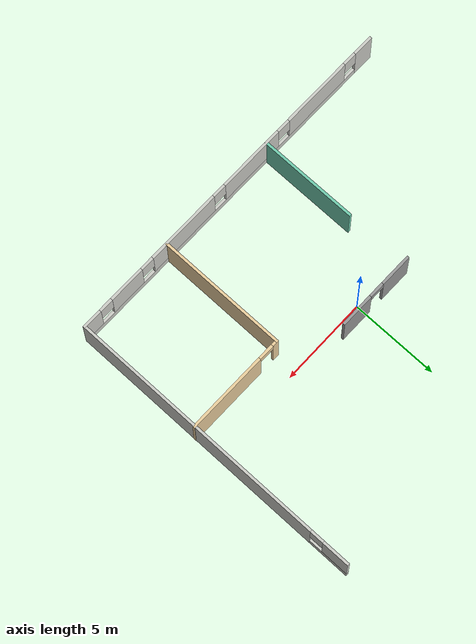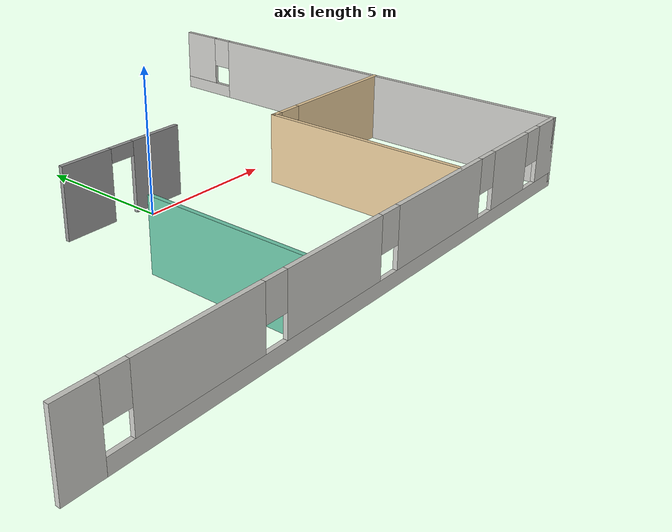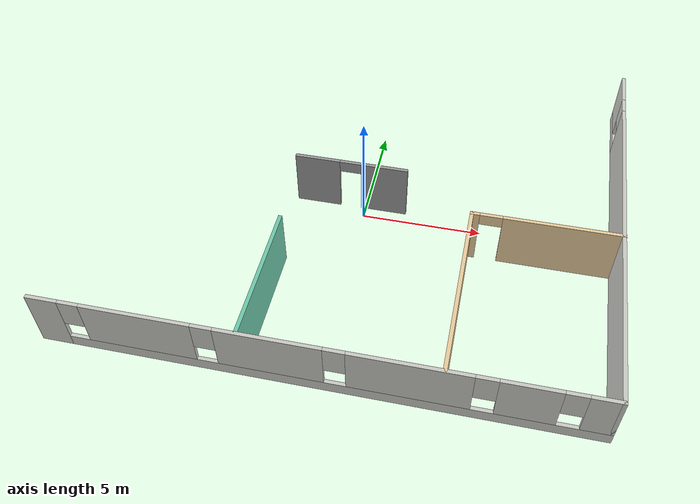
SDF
<sdf version="1.6">
 <model name="Building">
  <link name="Wall_18">
   <pose>4.58481 -4.95144 0 0 -0 1.5708</pose>
   <visual name="Wall_18_Visual">
    <pose>0 0 1.25 0 -0 0</pose>
    <geometry><box><size>7.5 0.15 2.5</size></box></geometry>
    <material>
     <script><uri>file://media/materials/scripts/gazebo.material</uri><name>Gazebo/Grey</name></script>
     <ambient>0.921569 0.807843 0.615686 1</ambient>
     <shader type="pixel"/>
     <diffuse>0.7 0.7 0.7 1</diffuse>
     <specular>0.01 0.01 0.01 1</specular>
     <emissive>0 0 0 1</emissive>
    </material>
    <meta><layer>0</layer></meta>
   </visual>
   <collision name="Wall_18_Collision">
    <pose>0 0 1.25 0 -0 0</pose>
    <geometry><box><size>7.5 0.15 2.5</size></box></geometry>
    <surface>
     <friction>
      <ode><mu>1</mu><mu2>1</mu2><fdir1>0 0 0</fdir1><slip1>0</slip1><slip2>0</slip2></ode>
      <torsional>
       <coefficient>1</coefficient>
       <patch_radius>0</patch_radius>
       <surface_radius>0</surface_radius>
       <use_patch_radius>1</use_patch_radius>
       <ode><slip>0</slip></ode>
      </torsional>
     </friction>
     <bounce><restitution_coefficient>0</restitution_coefficient><threshold>1e+06</threshold></bounce>
     <contact>
      <collide_without_contact>0</collide_without_contact>
      <collide_without_contact_bitmask>1</collide_without_contact_bitmask>
      <collide_bitmask>1</collide_bitmask>
      <ode>
       <soft_cfm>0</soft_cfm>
       <soft_erp>0.2</soft_erp>
       <kp>1e+13</kp>
       <kd>1</kd>
       <max_vel>0.01</max_vel>
       <min_depth>0</min_depth>
      </ode>
      <bullet>
       <split_impulse>1</split_impulse>
       <split_impulse_penetration_threshold>-0.01</split_impulse_penetration_threshold>
       <soft_cfm>0</soft_cfm>
       <soft_erp>0.2</soft_erp>
       <kp>1e+13</kp>
       <kd>1</kd>
      </bullet>
     </contact>
    </surface>
   </collision>
  </link>
  <link name="Wall_19">
   <pose>7.50981 -1.27643 0 0 -0 0</pose>
   <visual name="Wall_19_Visual_1">
    <pose>0.646095 0 1.25 0 -0 0</pose>
    <geometry><box><size>4.70781 0.15 2.5</size></box></geometry>
    <material>
     <script><uri>file://media/materials/scripts/gazebo.material</uri><name>Gazebo/Grey</name></script>
     <ambient>0.921569 0.807843 0.615686 1</ambient>
     <shader type="pixel"/>
     <diffuse>0.7 0.7 0.7 1</diffuse>
     <specular>0.01 0.01 0.01 1</specular>
     <emissive>0 0 0 1</emissive>
    </material>
    <meta><layer>0</layer></meta>
   </visual>
   <visual name="Wall_19_Visual_2">
    <pose>-2.15781 0 2.25 0 -0 0</pose>
    <geometry><box><size>0.9 0.15 0.5</size></box></geometry>
    <material>
     <script><uri>file://media/materials/scripts/gazebo.material</uri><name>Gazebo/Grey</name></script>
     <ambient>0.921569 0.807843 0.615686 1</ambient>
     <shader type="pixel"/>
     <diffuse>0.7 0.7 0.7 1</diffuse>
     <specular>0.01 0.01 0.01 1</specular>
     <emissive>0 0 0 1</emissive>
    </material>
    <meta><layer>0</layer></meta>
   </visual>
   <visual name="Wall_19_Visual_0">
    <pose>-2.8039 0 1.25 0 -0 0</pose>
    <geometry><box><size>0.39219 0.15 2.5</size></box></geometry>
    <material>
     <script><uri>file://media/materials/scripts/gazebo.material</uri><name>Gazebo/Grey</name></script>
     <ambient>0.921569 0.807843 0.615686 1</ambient>
     <shader type="pixel"/>
     <diffuse>0.7 0.7 0.7 1</diffuse>
     <specular>0.01 0.01 0.01 1</specular>
     <emissive>0 0 0 1</emissive>
    </material>
    <meta><layer>0</layer></meta>
   </visual>
   <collision name="Wall_19_Collision_1">
    <pose>0.646095 0 1.25 0 -0 0</pose>
    <geometry><box><size>4.70781 0.15 2.5</size></box></geometry>
    <surface>
     <friction>
      <ode><mu>1</mu><mu2>1</mu2><fdir1>0 0 0</fdir1><slip1>0</slip1><slip2>0</slip2></ode>
      <torsional>
       <coefficient>1</coefficient>
       <patch_radius>0</patch_radius>
       <surface_radius>0</surface_radius>
       <use_patch_radius>1</use_patch_radius>
       <ode><slip>0</slip></ode>
      </torsional>
     </friction>
     <bounce><restitution_coefficient>0</restitution_coefficient><threshold>1e+06</threshold></bounce>
     <contact>
      <collide_without_contact>0</collide_without_contact>
      <collide_without_contact_bitmask>1</collide_without_contact_bitmask>
      <collide_bitmask>1</collide_bitmask>
      <ode>
       <soft_cfm>0</soft_cfm>
       <soft_erp>0.2</soft_erp>
       <kp>1e+13</kp>
       <kd>1</kd>
       <max_vel>0.01</max_vel>
       <min_depth>0</min_depth>
      </ode>
      <bullet>
       <split_impulse>1</split_impulse>
       <split_impulse_penetration_threshold>-0.01</split_impulse_penetration_threshold>
       <soft_cfm>0</soft_cfm>
       <soft_erp>0.2</soft_erp>
       <kp>1e+13</kp>
       <kd>1</kd>
      </bullet>
     </contact>
    </surface>
   </collision>
   <collision name="Wall_19_Collision_0">
    <pose>-2.8039 0 1.25 0 -0 0</pose>
    <geometry><box><size>0.39219 0.15 2.5</size></box></geometry>
    <surface>
     <friction>
      <ode><mu>1</mu><mu2>1</mu2><fdir1>0 0 0</fdir1><slip1>0</slip1><slip2>0</slip2></ode>
      <torsional>
       <coefficient>1</coefficient>
       <patch_radius>0</patch_radius>
       <surface_radius>0</surface_radius>
       <use_patch_radius>1</use_patch_radius>
       <ode><slip>0</slip></ode>
      </torsional>
     </friction>
     <bounce><restitution_coefficient>0</restitution_coefficient><threshold>1e+06</threshold></bounce>
     <contact>
      <collide_without_contact>0</collide_without_contact>
      <collide_without_contact_bitmask>1</collide_without_contact_bitmask>
      <collide_bitmask>1</collide_bitmask>
      <ode>
       <soft_cfm>0</soft_cfm>
       <soft_erp>0.2</soft_erp>
       <kp>1e+13</kp>
       <kd>1</kd>
       <max_vel>0.01</max_vel>
       <min_depth>0</min_depth>
      </ode>
      <bullet>
       <split_impulse>1</split_impulse>
       <split_impulse_penetration_threshold>-0.01</split_impulse_penetration_threshold>
       <soft_cfm>0</soft_cfm>
       <soft_erp>0.2</soft_erp>
       <kp>1e+13</kp>
       <kd>1</kd>
      </bullet>
     </contact>
    </surface>
   </collision>
   <collision name="Wall_19_Collision_2">
    <pose>-2.15781 0 2.25 0 -0 0</pose>
    <geometry><box><size>0.9 0.15 0.5</size></box></geometry>
    <surface>
     <friction>
      <ode><mu>1</mu><mu2>1</mu2><fdir1>0 0 0</fdir1><slip1>0</slip1><slip2>0</slip2></ode>
      <torsional>
       <coefficient>1</coefficient>
       <patch_radius>0</patch_radius>
       <surface_radius>0</surface_radius>
       <use_patch_radius>1</use_patch_radius>
       <ode><slip>0</slip></ode>
      </torsional>
     </friction>
     <bounce><restitution_coefficient>0</restitution_coefficient><threshold>1e+06</threshold></bounce>
     <contact>
      <collide_without_contact>0</collide_without_contact>
      <collide_without_contact_bitmask>1</collide_without_contact_bitmask>
      <collide_bitmask>1</collide_bitmask>
      <ode>
       <soft_cfm>0</soft_cfm>
       <soft_erp>0.2</soft_erp>
       <kp>1e+13</kp>
       <kd>1</kd>
       <max_vel>0.01</max_vel>
       <min_depth>0</min_depth>
      </ode>
      <bullet>
       <split_impulse>1</split_impulse>
       <split_impulse_penetration_threshold>-0.01</split_impulse_penetration_threshold>
       <soft_cfm>0</soft_cfm>
       <soft_erp>0.2</soft_erp>
       <kp>1e+13</kp>
       <kd>1</kd>
      </bullet>
     </contact>
    </surface>
   </collision>
  </link>
  <link name="Wall_2">
   <pose>-0.009806 -8.675 0 0 -0 0</pose>
   <inertial>
    <mass>1</mass>
    <inertia><ixx>1</ixx><ixy>0</ixy><ixz>0</ixz><iyy>1</iyy><iyz>0</iyz><izz>1</izz></inertia>
   </inertial>
   <visual name="Wall_2_Visual_7">
    <pose>-8.87805 0 1.9 0 -0 0</pose>
    <geometry><box><size>0.8 0.15 1.2</size></box></geometry>
    <material>
     <script><uri>file://media/materials/scripts/gazebo.material</uri><name>Gazebo/CeilingTiled</name></script>
     <ambient>0.5 0.5 0.5 1</ambient>
     <shader type="pixel"><normal_map>__default__</normal_map></shader>
     <diffuse>1 1 1 1</diffuse>
     <specular>0 0 0 1</specular>
     <emissive>0 0 0 1</emissive>
    </material>
    <meta><layer>0</layer></meta>
   </visual>
   <visual name="Wall_2_Visual_5">
    <pose>7.47744 0 1.5 0 -0 0</pose>
    <geometry><box><size>2.12934 0.15 2</size></box></geometry>
    <material>
     <script><uri>file://media/materials/scripts/gazebo.material</uri><name>Gazebo/CeilingTiled</name></script>
     <ambient>0.5 0.5 0.5 1</ambient>
     <shader type="pixel"><normal_map>__default__</normal_map></shader>
     <diffuse>1 1 1 1</diffuse>
     <specular>0 0 0 1</specular>
     <emissive>0 0 0 1</emissive>
    </material>
    <meta><layer>0</layer></meta>
   </visual>
   <visual name="Wall_2_Visual_9">
    <pose>0.805049 0 1.9 0 -0 0</pose>
    <geometry><box><size>0.8 0.15 1.2</size></box></geometry>
    <material>
     <script><uri>file://media/materials/scripts/gazebo.material</uri><name>Gazebo/CeilingTiled</name></script>
     <ambient>0.5 0.5 0.5 1</ambient>
     <shader type="pixel"><normal_map>__default__</normal_map></shader>
     <diffuse>1 1 1 1</diffuse>
     <specular>0 0 0 1</specular>
     <emissive>0 0 0 1</emissive>
    </material>
    <meta><layer>0</layer></meta>
   </visual>
   <visual name="Wall_2_Visual_8">
    <pose>-3.91445 0 1.9 0 -0 0</pose>
    <geometry><box><size>0.8 0.15 1.2</size></box></geometry>
    <material>
     <script><uri>file://media/materials/scripts/gazebo.material</uri><name>Gazebo/CeilingTiled</name></script>
     <ambient>0.5 0.5 0.5 1</ambient>
     <shader type="pixel"><normal_map>__default__</normal_map></shader>
     <diffuse>1 1 1 1</diffuse>
     <specular>0 0 0 1</specular>
     <emissive>0 0 0 1</emissive>
    </material>
    <meta><layer>0</layer></meta>
   </visual>
   <visual name="Wall_2_Visual_4">
    <pose>3.40891 0 1.5 0 -0 0</pose>
    <geometry><box><size>4.40772 0.15 2</size></box></geometry>
    <material>
     <script><uri>file://media/materials/scripts/gazebo.material</uri><name>Gazebo/CeilingTiled</name></script>
     <ambient>0.5 0.5 0.5 1</ambient>
     <shader type="pixel"><normal_map>__default__</normal_map></shader>
     <diffuse>1 1 1 1</diffuse>
     <specular>0 0 0 1</specular>
     <emissive>0 0 0 1</emissive>
    </material>
    <meta><layer>0</layer></meta>
   </visual>
   <visual name="Wall_2_Visual_10">
    <pose>6.01277 0 1.9 0 -0 0</pose>
    <geometry><box><size>0.8 0.15 1.2</size></box></geometry>
    <material>
     <script><uri>file://media/materials/scripts/gazebo.material</uri><name>Gazebo/CeilingTiled</name></script>
     <ambient>0.5 0.5 0.5 1</ambient>
     <shader type="pixel"><normal_map>__default__</normal_map></shader>
     <diffuse>1 1 1 1</diffuse>
     <specular>0 0 0 1</specular>
     <emissive>0 0 0 1</emissive>
    </material>
    <meta><layer>0</layer></meta>
   </visual>
   <visual name="Wall_2_Visual_11">
    <pose>8.94211 0 1.9 0 -0 0</pose>
    <geometry><box><size>0.8 0.15 1.2</size></box></geometry>
    <material>
     <script><uri>file://media/materials/scripts/gazebo.material</uri><name>Gazebo/CeilingTiled</name></script>
     <ambient>0.5 0.5 0.5 1</ambient>
     <shader type="pixel"><normal_map>__default__</normal_map></shader>
     <diffuse>1 1 1 1</diffuse>
     <specular>0 0 0 1</specular>
     <emissive>0 0 0 1</emissive>
    </material>
    <meta><layer>0</layer></meta>
   </visual>
   <visual name="Wall_2_Visual_6">
    <pose>9.92106 0 1.5 0 -0 0</pose>
    <geometry><box><size>1.15789 0.15 2</size></box></geometry>
    <material>
     <script><uri>file://media/materials/scripts/gazebo.material</uri><name>Gazebo/CeilingTiled</name></script>
     <ambient>0.5 0.5 0.5 1</ambient>
     <shader type="pixel"><normal_map>__default__</normal_map></shader>
     <diffuse>1 1 1 1</diffuse>
     <specular>0 0 0 1</specular>
     <emissive>0 0 0 1</emissive>
    </material>
    <meta><layer>0</layer></meta>
   </visual>
   <visual name="Wall_2_Visual_1">
    <pose>0.610973 0 0.25 0 -0 0</pose>
    <geometry><box><size>19.7781 0.15 0.5</size></box></geometry>
    <material>
     <script><uri>file://media/materials/scripts/gazebo.material</uri><name>Gazebo/CeilingTiled</name></script>
     <ambient>0.5 0.5 0.5 1</ambient>
     <shader type="pixel"><normal_map>__default__</normal_map></shader>
     <diffuse>1 1 1 1</diffuse>
     <specular>0 0 0 1</specular>
     <emissive>0 0 0 1</emissive>
    </material>
    <meta><layer>0</layer></meta>
   </visual>
   <visual name="Wall_2_Visual_3">
    <pose>-1.5547 0 1.5 0 -0 0</pose>
    <geometry><box><size>3.9195 0.15 2</size></box></geometry>
    <material>
     <script><uri>file://media/materials/scripts/gazebo.material</uri><name>Gazebo/CeilingTiled</name></script>
     <ambient>0.5 0.5 0.5 1</ambient>
     <shader type="pixel"><normal_map>__default__</normal_map></shader>
     <diffuse>1 1 1 1</diffuse>
     <specular>0 0 0 1</specular>
     <emissive>0 0 0 1</emissive>
    </material>
    <meta><layer>0</layer></meta>
   </visual>
   <visual name="Wall_2_Visual_0">
    <pose>-9.88903 0 1.25 0 -0 0</pose>
    <geometry><box><size>1.22195 0.15 2.5</size></box></geometry>
    <material>
     <script><uri>file://media/materials/scripts/gazebo.material</uri><name>Gazebo/CeilingTiled</name></script>
     <ambient>0.5 0.5 0.5 1</ambient>
     <shader type="pixel"><normal_map>__default__</normal_map></shader>
     <diffuse>1 1 1 1</diffuse>
     <specular>0 0 0 1</specular>
     <emissive>0 0 0 1</emissive>
    </material>
    <meta><layer>0</layer></meta>
   </visual>
   <visual name="Wall_2_Visual_2">
    <pose>-6.39625 0 1.5 0 -0 0</pose>
    <geometry><box><size>4.16361 0.15 2</size></box></geometry>
    <material>
     <script><uri>file://media/materials/scripts/gazebo.material</uri><name>Gazebo/CeilingTiled</name></script>
     <ambient>0.5 0.5 0.5 1</ambient>
     <shader type="pixel"><normal_map>__default__</normal_map></shader>
     <diffuse>1 1 1 1</diffuse>
     <specular>0 0 0 1</specular>
     <emissive>0 0 0 1</emissive>
    </material>
    <meta><layer>0</layer></meta>
   </visual>
   <collision name="Wall_2_Collision_7">
    <pose>-8.87805 0 1.9 0 -0 0</pose>
    <geometry><box><size>0.8 0.15 1.2</size></box></geometry>
    <surface>
     <friction>
      <ode><mu>1</mu><mu2>1</mu2><fdir1>0 0 0</fdir1><slip1>0</slip1><slip2>0</slip2></ode>
      <torsional>
       <coefficient>1</coefficient>
       <patch_radius>0</patch_radius>
       <surface_radius>0</surface_radius>
       <use_patch_radius>1</use_patch_radius>
       <ode><slip>0</slip></ode>
      </torsional>
     </friction>
     <bounce><restitution_coefficient>0</restitution_coefficient><threshold>1e+06</threshold></bounce>
     <contact>
      <collide_without_contact>0</collide_without_contact>
      <collide_without_contact_bitmask>1</collide_without_contact_bitmask>
      <collide_bitmask>1</collide_bitmask>
      <ode>
       <soft_cfm>0</soft_cfm>
       <soft_erp>0.2</soft_erp>
       <kp>1e+13</kp>
       <kd>1</kd>
       <max_vel>0.01</max_vel>
       <min_depth>0</min_depth>
      </ode>
      <bullet>
       <split_impulse>1</split_impulse>
       <split_impulse_penetration_threshold>-0.01</split_impulse_penetration_threshold>
       <soft_cfm>0</soft_cfm>
       <soft_erp>0.2</soft_erp>
       <kp>1e+13</kp>
       <kd>1</kd>
      </bullet>
     </contact>
    </surface>
   </collision>
   <collision name="Wall_2_Collision_1">
    <pose>0.610973 0 0.25 0 -0 0</pose>
    <geometry><box><size>19.7781 0.15 0.5</size></box></geometry>
    <surface>
     <friction>
      <ode><mu>1</mu><mu2>1</mu2><fdir1>0 0 0</fdir1><slip1>0</slip1><slip2>0</slip2></ode>
      <torsional>
       <coefficient>1</coefficient>
       <patch_radius>0</patch_radius>
       <surface_radius>0</surface_radius>
       <use_patch_radius>1</use_patch_radius>
       <ode><slip>0</slip></ode>
      </torsional>
     </friction>
     <bounce><restitution_coefficient>0</restitution_coefficient><threshold>1e+06</threshold></bounce>
     <contact>
      <collide_without_contact>0</collide_without_contact>
      <collide_without_contact_bitmask>1</collide_without_contact_bitmask>
      <collide_bitmask>1</collide_bitmask>
      <ode>
       <soft_cfm>0</soft_cfm>
       <soft_erp>0.2</soft_erp>
       <kp>1e+13</kp>
       <kd>1</kd>
       <max_vel>0.01</max_vel>
       <min_depth>0</min_depth>
      </ode>
      <bullet>
       <split_impulse>1</split_impulse>
       <split_impulse_penetration_threshold>-0.01</split_impulse_penetration_threshold>
       <soft_cfm>0</soft_cfm>
       <soft_erp>0.2</soft_erp>
       <kp>1e+13</kp>
       <kd>1</kd>
      </bullet>
     </contact>
    </surface>
   </collision>
   <collision name="Wall_2_Collision_3">
    <pose>-1.5547 0 1.5 0 -0 0</pose>
    <geometry><box><size>3.9195 0.15 2</size></box></geometry>
    <surface>
     <friction>
      <ode><mu>1</mu><mu2>1</mu2><fdir1>0 0 0</fdir1><slip1>0</slip1><slip2>0</slip2></ode>
      <torsional>
       <coefficient>1</coefficient>
       <patch_radius>0</patch_radius>
       <surface_radius>0</surface_radius>
       <use_patch_radius>1</use_patch_radius>
       <ode><slip>0</slip></ode>
      </torsional>
     </friction>
     <bounce><restitution_coefficient>0</restitution_coefficient><threshold>1e+06</threshold></bounce>
     <contact>
      <collide_without_contact>0</collide_without_contact>
      <collide_without_contact_bitmask>1</collide_without_contact_bitmask>
      <collide_bitmask>1</collide_bitmask>
      <ode>
       <soft_cfm>0</soft_cfm>
       <soft_erp>0.2</soft_erp>
       <kp>1e+13</kp>
       <kd>1</kd>
       <max_vel>0.01</max_vel>
       <min_depth>0</min_depth>
      </ode>
      <bullet>
       <split_impulse>1</split_impulse>
       <split_impulse_penetration_threshold>-0.01</split_impulse_penetration_threshold>
       <soft_cfm>0</soft_cfm>
       <soft_erp>0.2</soft_erp>
       <kp>1e+13</kp>
       <kd>1</kd>
      </bullet>
     </contact>
    </surface>
   </collision>
   <collision name="Wall_2_Collision_11">
    <pose>8.94211 0 1.9 0 -0 0</pose>
    <geometry><box><size>0.8 0.15 1.2</size></box></geometry>
    <surface>
     <friction>
      <ode><mu>1</mu><mu2>1</mu2><fdir1>0 0 0</fdir1><slip1>0</slip1><slip2>0</slip2></ode>
      <torsional>
       <coefficient>1</coefficient>
       <patch_radius>0</patch_radius>
       <surface_radius>0</surface_radius>
       <use_patch_radius>1</use_patch_radius>
       <ode><slip>0</slip></ode>
      </torsional>
     </friction>
     <bounce><restitution_coefficient>0</restitution_coefficient><threshold>1e+06</threshold></bounce>
     <contact>
      <collide_without_contact>0</collide_without_contact>
      <collide_without_contact_bitmask>1</collide_without_contact_bitmask>
      <collide_bitmask>1</collide_bitmask>
      <ode>
       <soft_cfm>0</soft_cfm>
       <soft_erp>0.2</soft_erp>
       <kp>1e+13</kp>
       <kd>1</kd>
       <max_vel>0.01</max_vel>
       <min_depth>0</min_depth>
      </ode>
      <bullet>
       <split_impulse>1</split_impulse>
       <split_impulse_penetration_threshold>-0.01</split_impulse_penetration_threshold>
       <soft_cfm>0</soft_cfm>
       <soft_erp>0.2</soft_erp>
       <kp>1e+13</kp>
       <kd>1</kd>
      </bullet>
     </contact>
    </surface>
   </collision>
   <collision name="Wall_2_Collision_9">
    <pose>0.805049 0 1.9 0 -0 0</pose>
    <geometry><box><size>0.8 0.15 1.2</size></box></geometry>
    <surface>
     <friction>
      <ode><mu>1</mu><mu2>1</mu2><fdir1>0 0 0</fdir1><slip1>0</slip1><slip2>0</slip2></ode>
      <torsional>
       <coefficient>1</coefficient>
       <patch_radius>0</patch_radius>
       <surface_radius>0</surface_radius>
       <use_patch_radius>1</use_patch_radius>
       <ode><slip>0</slip></ode>
      </torsional>
     </friction>
     <bounce><restitution_coefficient>0</restitution_coefficient><threshold>1e+06</threshold></bounce>
     <contact>
      <collide_without_contact>0</collide_without_contact>
      <collide_without_contact_bitmask>1</collide_without_contact_bitmask>
      <collide_bitmask>1</collide_bitmask>
      <ode>
       <soft_cfm>0</soft_cfm>
       <soft_erp>0.2</soft_erp>
       <kp>1e+13</kp>
       <kd>1</kd>
       <max_vel>0.01</max_vel>
       <min_depth>0</min_depth>
      </ode>
      <bullet>
       <split_impulse>1</split_impulse>
       <split_impulse_penetration_threshold>-0.01</split_impulse_penetration_threshold>
       <soft_cfm>0</soft_cfm>
       <soft_erp>0.2</soft_erp>
       <kp>1e+13</kp>
       <kd>1</kd>
      </bullet>
     </contact>
    </surface>
   </collision>
   <collision name="Wall_2_Collision_5">
    <pose>7.47744 0 1.5 0 -0 0</pose>
    <geometry><box><size>2.12934 0.15 2</size></box></geometry>
    <surface>
     <friction>
      <ode><mu>1</mu><mu2>1</mu2><fdir1>0 0 0</fdir1><slip1>0</slip1><slip2>0</slip2></ode>
      <torsional>
       <coefficient>1</coefficient>
       <patch_radius>0</patch_radius>
       <surface_radius>0</surface_radius>
       <use_patch_radius>1</use_patch_radius>
       <ode><slip>0</slip></ode>
      </torsional>
     </friction>
     <bounce><restitution_coefficient>0</restitution_coefficient><threshold>1e+06</threshold></bounce>
     <contact>
      <collide_without_contact>0</collide_without_contact>
      <collide_without_contact_bitmask>1</collide_without_contact_bitmask>
      <collide_bitmask>1</collide_bitmask>
      <ode>
       <soft_cfm>0</soft_cfm>
       <soft_erp>0.2</soft_erp>
       <kp>1e+13</kp>
       <kd>1</kd>
       <max_vel>0.01</max_vel>
       <min_depth>0</min_depth>
      </ode>
      <bullet>
       <split_impulse>1</split_impulse>
       <split_impulse_penetration_threshold>-0.01</split_impulse_penetration_threshold>
       <soft_cfm>0</soft_cfm>
       <soft_erp>0.2</soft_erp>
       <kp>1e+13</kp>
       <kd>1</kd>
      </bullet>
     </contact>
    </surface>
   </collision>
   <collision name="Wall_2_Collision_4">
    <pose>3.40891 0 1.5 0 -0 0</pose>
    <geometry><box><size>4.40772 0.15 2</size></box></geometry>
    <surface>
     <friction>
      <ode><mu>1</mu><mu2>1</mu2><fdir1>0 0 0</fdir1><slip1>0</slip1><slip2>0</slip2></ode>
      <torsional>
       <coefficient>1</coefficient>
       <patch_radius>0</patch_radius>
       <surface_radius>0</surface_radius>
       <use_patch_radius>1</use_patch_radius>
       <ode><slip>0</slip></ode>
      </torsional>
     </friction>
     <bounce><restitution_coefficient>0</restitution_coefficient><threshold>1e+06</threshold></bounce>
     <contact>
      <collide_without_contact>0</collide_without_contact>
      <collide_without_contact_bitmask>1</collide_without_contact_bitmask>
      <collide_bitmask>1</collide_bitmask>
      <ode>
       <soft_cfm>0</soft_cfm>
       <soft_erp>0.2</soft_erp>
       <kp>1e+13</kp>
       <kd>1</kd>
       <max_vel>0.01</max_vel>
       <min_depth>0</min_depth>
      </ode>
      <bullet>
       <split_impulse>1</split_impulse>
       <split_impulse_penetration_threshold>-0.01</split_impulse_penetration_threshold>
       <soft_cfm>0</soft_cfm>
       <soft_erp>0.2</soft_erp>
       <kp>1e+13</kp>
       <kd>1</kd>
      </bullet>
     </contact>
    </surface>
   </collision>
   <collision name="Wall_2_Collision_0">
    <pose>-9.88903 0 1.25 0 -0 0</pose>
    <geometry><box><size>1.22195 0.15 2.5</size></box></geometry>
    <surface>
     <friction>
      <ode><mu>1</mu><mu2>1</mu2><fdir1>0 0 0</fdir1><slip1>0</slip1><slip2>0</slip2></ode>
      <torsional>
       <coefficient>1</coefficient>
       <patch_radius>0</patch_radius>
       <surface_radius>0</surface_radius>
       <use_patch_radius>1</use_patch_radius>
       <ode><slip>0</slip></ode>
      </torsional>
     </friction>
     <bounce><restitution_coefficient>0</restitution_coefficient><threshold>1e+06</threshold></bounce>
     <contact>
      <collide_without_contact>0</collide_without_contact>
      <collide_without_contact_bitmask>1</collide_without_contact_bitmask>
      <collide_bitmask>1</collide_bitmask>
      <ode>
       <soft_cfm>0</soft_cfm>
       <soft_erp>0.2</soft_erp>
       <kp>1e+13</kp>
       <kd>1</kd>
       <max_vel>0.01</max_vel>
       <min_depth>0</min_depth>
      </ode>
      <bullet>
       <split_impulse>1</split_impulse>
       <split_impulse_penetration_threshold>-0.01</split_impulse_penetration_threshold>
       <soft_cfm>0</soft_cfm>
       <soft_erp>0.2</soft_erp>
       <kp>1e+13</kp>
       <kd>1</kd>
      </bullet>
     </contact>
    </surface>
   </collision>
   <collision name="Wall_2_Collision_2">
    <pose>-6.39625 0 1.5 0 -0 0</pose>
    <geometry><box><size>4.16361 0.15 2</size></box></geometry>
    <surface>
     <friction>
      <ode><mu>1</mu><mu2>1</mu2><fdir1>0 0 0</fdir1><slip1>0</slip1><slip2>0</slip2></ode>
      <torsional>
       <coefficient>1</coefficient>
       <patch_radius>0</patch_radius>
       <surface_radius>0</surface_radius>
       <use_patch_radius>1</use_patch_radius>
       <ode><slip>0</slip></ode>
      </torsional>
     </friction>
     <bounce><restitution_coefficient>0</restitution_coefficient><threshold>1e+06</threshold></bounce>
     <contact>
      <collide_without_contact>0</collide_without_contact>
      <collide_without_contact_bitmask>1</collide_without_contact_bitmask>
      <collide_bitmask>1</collide_bitmask>
      <ode>
       <soft_cfm>0</soft_cfm>
       <soft_erp>0.2</soft_erp>
       <kp>1e+13</kp>
       <kd>1</kd>
       <max_vel>0.01</max_vel>
       <min_depth>0</min_depth>
      </ode>
      <bullet>
       <split_impulse>1</split_impulse>
       <split_impulse_penetration_threshold>-0.01</split_impulse_penetration_threshold>
       <soft_cfm>0</soft_cfm>
       <soft_erp>0.2</soft_erp>
       <kp>1e+13</kp>
       <kd>1</kd>
      </bullet>
     </contact>
    </surface>
   </collision>
   <collision name="Wall_2_Collision_6">
    <pose>9.92106 0 1.5 0 -0 0</pose>
    <geometry><box><size>1.15789 0.15 2</size></box></geometry>
    <surface>
     <friction>
      <ode><mu>1</mu><mu2>1</mu2><fdir1>0 0 0</fdir1><slip1>0</slip1><slip2>0</slip2></ode>
      <torsional>
       <coefficient>1</coefficient>
       <patch_radius>0</patch_radius>
       <surface_radius>0</surface_radius>
       <use_patch_radius>1</use_patch_radius>
       <ode><slip>0</slip></ode>
      </torsional>
     </friction>
     <bounce><restitution_coefficient>0</restitution_coefficient><threshold>1e+06</threshold></bounce>
     <contact>
      <collide_without_contact>0</collide_without_contact>
      <collide_without_contact_bitmask>1</collide_without_contact_bitmask>
      <collide_bitmask>1</collide_bitmask>
      <ode>
       <soft_cfm>0</soft_cfm>
       <soft_erp>0.2</soft_erp>
       <kp>1e+13</kp>
       <kd>1</kd>
       <max_vel>0.01</max_vel>
       <min_depth>0</min_depth>
      </ode>
      <bullet>
       <split_impulse>1</split_impulse>
       <split_impulse_penetration_threshold>-0.01</split_impulse_penetration_threshold>
       <soft_cfm>0</soft_cfm>
       <soft_erp>0.2</soft_erp>
       <kp>1e+13</kp>
       <kd>1</kd>
      </bullet>
     </contact>
    </surface>
   </collision>
   <collision name="Wall_2_Collision_8">
    <pose>-3.91445 0 1.9 0 -0 0</pose>
    <geometry><box><size>0.8 0.15 1.2</size></box></geometry>
    <surface>
     <friction>
      <ode><mu>1</mu><mu2>1</mu2><fdir1>0 0 0</fdir1><slip1>0</slip1><slip2>0</slip2></ode>
      <torsional>
       <coefficient>1</coefficient>
       <patch_radius>0</patch_radius>
       <surface_radius>0</surface_radius>
       <use_patch_radius>1</use_patch_radius>
       <ode><slip>0</slip></ode>
      </torsional>
     </friction>
     <bounce><restitution_coefficient>0</restitution_coefficient><threshold>1e+06</threshold></bounce>
     <contact>
      <collide_without_contact>0</collide_without_contact>
      <collide_without_contact_bitmask>1</collide_without_contact_bitmask>
      <collide_bitmask>1</collide_bitmask>
      <ode>
       <soft_cfm>0</soft_cfm>
       <soft_erp>0.2</soft_erp>
       <kp>1e+13</kp>
       <kd>1</kd>
       <max_vel>0.01</max_vel>
       <min_depth>0</min_depth>
      </ode>
      <bullet>
       <split_impulse>1</split_impulse>
       <split_impulse_penetration_threshold>-0.01</split_impulse_penetration_threshold>
       <soft_cfm>0</soft_cfm>
       <soft_erp>0.2</soft_erp>
       <kp>1e+13</kp>
       <kd>1</kd>
      </bullet>
     </contact>
    </surface>
   </collision>
   <collision name="Wall_2_Collision_10">
    <pose>6.01277 0 1.9 0 -0 0</pose>
    <geometry><box><size>0.8 0.15 1.2</size></box></geometry>
    <surface>
     <friction>
      <ode><mu>1</mu><mu2>1</mu2><fdir1>0 0 0</fdir1><slip1>0</slip1><slip2>0</slip2></ode>
      <torsional>
       <coefficient>1</coefficient>
       <patch_radius>0</patch_radius>
       <surface_radius>0</surface_radius>
       <use_patch_radius>1</use_patch_radius>
       <ode><slip>0</slip></ode>
      </torsional>
     </friction>
     <bounce><restitution_coefficient>0</restitution_coefficient><threshold>1e+06</threshold></bounce>
     <contact>
      <collide_without_contact>0</collide_without_contact>
      <collide_without_contact_bitmask>1</collide_without_contact_bitmask>
      <collide_bitmask>1</collide_bitmask>
      <ode>
       <soft_cfm>0</soft_cfm>
       <soft_erp>0.2</soft_erp>
       <kp>1e+13</kp>
       <kd>1</kd>
       <max_vel>0.01</max_vel>
       <min_depth>0</min_depth>
      </ode>
      <bullet>
       <split_impulse>1</split_impulse>
       <split_impulse_penetration_threshold>-0.01</split_impulse_penetration_threshold>
       <soft_cfm>0</soft_cfm>
       <soft_erp>0.2</soft_erp>
       <kp>1e+13</kp>
       <kd>1</kd>
      </bullet>
     </contact>
    </surface>
   </collision>
  </link>
  <link name="Wall_21">
   <pose>-0.638315 0.559038 0 0 -0 0</pose>
   <inertial>
    <mass>1</mass>
    <inertia><ixx>1</ixx><ixy>0</ixy><ixz>0</ixz><iyy>1</iyy><iyz>0</iyz><izz>1</izz></inertia>
   </inertial>
   <visual name="Wall_21_Visual_2">
    <pose>-0.031114 0 2.25 0 -0 0</pose>
    <geometry><box><size>0.9 0.15 0.5</size></box></geometry>
    <material>
     <script><uri>file://media/materials/scripts/gazebo.material</uri><name>Gazebo/Grey</name></script>
     <ambient>0 0 0 1</ambient>
     <shader type="pixel"><normal_map>__default__</normal_map></shader>
     <diffuse>0.7 0.7 0.7 1</diffuse>
     <specular>0.01 0.01 0.01 1</specular>
     <emissive>0 0 0 1</emissive>
    </material>
    <meta><layer>0</layer></meta>
   </visual>
   <visual name="Wall_21_Visual_0">
    <pose>-1.42806 0 1.25 0 -0 0</pose>
    <geometry><box><size>1.89389 0.15 2.5</size></box></geometry>
    <material>
     <script><uri>file://media/materials/scripts/gazebo.material</uri><name>Gazebo/Grey</name></script>
     <ambient>0 0 0 1</ambient>
     <shader type="pixel"><normal_map>__default__</normal_map></shader>
     <diffuse>0.7 0.7 0.7 1</diffuse>
     <specular>0.01 0.01 0.01 1</specular>
     <emissive>0 0 0 1</emissive>
    </material>
    <meta><layer>0</layer></meta>
   </visual>
   <visual name="Wall_21_Visual_1">
    <pose>1.39694 0 1.25 0 -0 0</pose>
    <geometry><box><size>1.95611 0.15 2.5</size></box></geometry>
    <material>
     <script><uri>file://media/materials/scripts/gazebo.material</uri><name>Gazebo/Grey</name></script>
     <ambient>0 0 0 1</ambient>
     <shader type="pixel"><normal_map>__default__</normal_map></shader>
     <diffuse>0.7 0.7 0.7 1</diffuse>
     <specular>0.01 0.01 0.01 1</specular>
     <emissive>0 0 0 1</emissive>
    </material>
    <meta><layer>0</layer></meta>
   </visual>
   <collision name="Wall_21_Collision_1">
    <pose>1.39694 0 1.25 0 -0 0</pose>
    <geometry><box><size>1.95611 0.15 2.5</size></box></geometry>
    <surface>
     <friction>
      <ode><mu>1</mu><mu2>1</mu2><fdir1>0 0 0</fdir1><slip1>0</slip1><slip2>0</slip2></ode>
      <torsional>
       <coefficient>1</coefficient>
       <patch_radius>0</patch_radius>
       <surface_radius>0</surface_radius>
       <use_patch_radius>1</use_patch_radius>
       <ode><slip>0</slip></ode>
      </torsional>
     </friction>
     <bounce><restitution_coefficient>0</restitution_coefficient><threshold>1e+06</threshold></bounce>
     <contact>
      <collide_without_contact>0</collide_without_contact>
      <collide_without_contact_bitmask>1</collide_without_contact_bitmask>
      <collide_bitmask>1</collide_bitmask>
      <ode>
       <soft_cfm>0</soft_cfm>
       <soft_erp>0.2</soft_erp>
       <kp>1e+13</kp>
       <kd>1</kd>
       <max_vel>0.01</max_vel>
       <min_depth>0</min_depth>
      </ode>
      <bullet>
       <split_impulse>1</split_impulse>
       <split_impulse_penetration_threshold>-0.01</split_impulse_penetration_threshold>
       <soft_cfm>0</soft_cfm>
       <soft_erp>0.2</soft_erp>
       <kp>1e+13</kp>
       <kd>1</kd>
      </bullet>
     </contact>
    </surface>
   </collision>
   <collision name="Wall_21_Collision_2">
    <pose>-0.031114 0 2.25 0 -0 0</pose>
    <geometry><box><size>0.9 0.15 0.5</size></box></geometry>
    <surface>
     <friction>
      <ode><mu>1</mu><mu2>1</mu2><fdir1>0 0 0</fdir1><slip1>0</slip1><slip2>0</slip2></ode>
      <torsional>
       <coefficient>1</coefficient>
       <patch_radius>0</patch_radius>
       <surface_radius>0</surface_radius>
       <use_patch_radius>1</use_patch_radius>
       <ode><slip>0</slip></ode>
      </torsional>
     </friction>
     <bounce><restitution_coefficient>0</restitution_coefficient><threshold>1e+06</threshold></bounce>
     <contact>
      <collide_without_contact>0</collide_without_contact>
      <collide_without_contact_bitmask>1</collide_without_contact_bitmask>
      <collide_bitmask>1</collide_bitmask>
      <ode>
       <soft_cfm>0</soft_cfm>
       <soft_erp>0.2</soft_erp>
       <kp>1e+13</kp>
       <kd>1</kd>
       <max_vel>0.01</max_vel>
       <min_depth>0</min_depth>
      </ode>
      <bullet>
       <split_impulse>1</split_impulse>
       <split_impulse_penetration_threshold>-0.01</split_impulse_penetration_threshold>
       <soft_cfm>0</soft_cfm>
       <soft_erp>0.2</soft_erp>
       <kp>1e+13</kp>
       <kd>1</kd>
      </bullet>
     </contact>
    </surface>
   </collision>
   <collision name="Wall_21_Collision_0">
    <pose>-1.42806 0 1.25 0 -0 0</pose>
    <geometry><box><size>1.89389 0.15 2.5</size></box></geometry>
    <surface>
     <friction>
      <ode><mu>1</mu><mu2>1</mu2><fdir1>0 0 0</fdir1><slip1>0</slip1><slip2>0</slip2></ode>
      <torsional>
       <coefficient>1</coefficient>
       <patch_radius>0</patch_radius>
       <surface_radius>0</surface_radius>
       <use_patch_radius>1</use_patch_radius>
       <ode><slip>0</slip></ode>
      </torsional>
     </friction>
     <bounce><restitution_coefficient>0</restitution_coefficient><threshold>1e+06</threshold></bounce>
     <contact>
      <collide_without_contact>0</collide_without_contact>
      <collide_without_contact_bitmask>1</collide_without_contact_bitmask>
      <collide_bitmask>1</collide_bitmask>
      <ode>
       <soft_cfm>0</soft_cfm>
       <soft_erp>0.2</soft_erp>
       <kp>1e+13</kp>
       <kd>1</kd>
       <max_vel>0.01</max_vel>
       <min_depth>0</min_depth>
      </ode>
      <bullet>
       <split_impulse>1</split_impulse>
       <split_impulse_penetration_threshold>-0.01</split_impulse_penetration_threshold>
       <soft_cfm>0</soft_cfm>
       <soft_erp>0.2</soft_erp>
       <kp>1e+13</kp>
       <kd>1</kd>
      </bullet>
     </contact>
    </surface>
   </collision>
  </link>
  <link name="Wall_3">
   <pose>10.4152 0 0 0 -0 1.5708</pose>
   <inertial>
    <mass>1</mass>
    <inertia><ixx>1</ixx><ixy>0</ixy><ixz>0</ixz><iyy>1</iyy><iyz>0</iyz><izz>1</izz></inertia>
   </inertial>
   <visual name="Wall_3_Visual_1">
    <pose>7.54165 0 0.25 0 -0 0</pose>
    <geometry><box><size>2.41671 0.15 0.5</size></box></geometry>
    <material>
     <script><uri>file://media/materials/scripts/gazebo.material</uri><name>Gazebo/CeilingTiled</name></script>
     <ambient>0.5 0.5 0.5 1</ambient>
     <shader type="pixel"><normal_map>__default__</normal_map></shader>
     <diffuse>1 1 1 1</diffuse>
     <specular>0 0 0 1</specular>
     <emissive>0 0 0 1</emissive>
    </material>
    <meta><layer>0</layer></meta>
   </visual>
   <visual name="Wall_3_Visual_2">
    <pose>7.94165 0 1.5 0 -0 0</pose>
    <geometry><box><size>1.61671 0.15 2</size></box></geometry>
    <material>
     <script><uri>file://media/materials/scripts/gazebo.material</uri><name>Gazebo/CeilingTiled</name></script>
     <ambient>0.5 0.5 0.5 1</ambient>
     <shader type="pixel"><normal_map>__default__</normal_map></shader>
     <diffuse>1 1 1 1</diffuse>
     <specular>0 0 0 1</specular>
     <emissive>0 0 0 1</emissive>
    </material>
    <meta><layer>0</layer></meta>
   </visual>
   <visual name="Wall_3_Visual_3">
    <pose>6.73329 0 1.9 0 -0 0</pose>
    <geometry><box><size>0.8 0.15 1.2</size></box></geometry>
    <material>
     <script><uri>file://media/materials/scripts/gazebo.material</uri><name>Gazebo/CeilingTiled</name></script>
     <ambient>0.5 0.5 0.5 1</ambient>
     <shader type="pixel"><normal_map>__default__</normal_map></shader>
     <diffuse>1 1 1 1</diffuse>
     <specular>0 0 0 1</specular>
     <emissive>0 0 0 1</emissive>
    </material>
    <meta><layer>0</layer></meta>
   </visual>
   <visual name="Wall_3_Visual_0">
    <pose>-1.20835 0 1.25 0 -0 0</pose>
    <geometry><box><size>15.0833 0.15 2.5</size></box></geometry>
    <material>
     <script><uri>file://media/materials/scripts/gazebo.material</uri><name>Gazebo/CeilingTiled</name></script>
     <ambient>0.5 0.5 0.5 1</ambient>
     <shader type="pixel"><normal_map>__default__</normal_map></shader>
     <diffuse>1 1 1 1</diffuse>
     <specular>0 0 0 1</specular>
     <emissive>0 0 0 1</emissive>
    </material>
    <meta><layer>0</layer></meta>
   </visual>
   <collision name="Wall_3_Collision_0">
    <pose>-1.20835 0 1.25 0 -0 0</pose>
    <geometry><box><size>15.0833 0.15 2.5</size></box></geometry>
    <surface>
     <friction>
      <ode><mu>1</mu><mu2>1</mu2><fdir1>0 0 0</fdir1><slip1>0</slip1><slip2>0</slip2></ode>
      <torsional>
       <coefficient>1</coefficient>
       <patch_radius>0</patch_radius>
       <surface_radius>0</surface_radius>
       <use_patch_radius>1</use_patch_radius>
       <ode><slip>0</slip></ode>
      </torsional>
     </friction>
     <bounce><restitution_coefficient>0</restitution_coefficient><threshold>1e+06</threshold></bounce>
     <contact>
      <collide_without_contact>0</collide_without_contact>
      <collide_without_contact_bitmask>1</collide_without_contact_bitmask>
      <collide_bitmask>1</collide_bitmask>
      <ode>
       <soft_cfm>0</soft_cfm>
       <soft_erp>0.2</soft_erp>
       <kp>1e+13</kp>
       <kd>1</kd>
       <max_vel>0.01</max_vel>
       <min_depth>0</min_depth>
      </ode>
      <bullet>
       <split_impulse>1</split_impulse>
       <split_impulse_penetration_threshold>-0.01</split_impulse_penetration_threshold>
       <soft_cfm>0</soft_cfm>
       <soft_erp>0.2</soft_erp>
       <kp>1e+13</kp>
       <kd>1</kd>
      </bullet>
     </contact>
    </surface>
   </collision>
   <collision name="Wall_3_Collision_2">
    <pose>7.94165 0 1.5 0 -0 0</pose>
    <geometry><box><size>1.61671 0.15 2</size></box></geometry>
    <surface>
     <friction>
      <ode><mu>1</mu><mu2>1</mu2><fdir1>0 0 0</fdir1><slip1>0</slip1><slip2>0</slip2></ode>
      <torsional>
       <coefficient>1</coefficient>
       <patch_radius>0</patch_radius>
       <surface_radius>0</surface_radius>
       <use_patch_radius>1</use_patch_radius>
       <ode><slip>0</slip></ode>
      </torsional>
     </friction>
     <bounce><restitution_coefficient>0</restitution_coefficient><threshold>1e+06</threshold></bounce>
     <contact>
      <collide_without_contact>0</collide_without_contact>
      <collide_without_contact_bitmask>1</collide_without_contact_bitmask>
      <collide_bitmask>1</collide_bitmask>
      <ode>
       <soft_cfm>0</soft_cfm>
       <soft_erp>0.2</soft_erp>
       <kp>1e+13</kp>
       <kd>1</kd>
       <max_vel>0.01</max_vel>
       <min_depth>0</min_depth>
      </ode>
      <bullet>
       <split_impulse>1</split_impulse>
       <split_impulse_penetration_threshold>-0.01</split_impulse_penetration_threshold>
       <soft_cfm>0</soft_cfm>
       <soft_erp>0.2</soft_erp>
       <kp>1e+13</kp>
       <kd>1</kd>
      </bullet>
     </contact>
    </surface>
   </collision>
   <collision name="Wall_3_Collision_1">
    <pose>7.54165 0 0.25 0 -0 0</pose>
    <geometry><box><size>2.41671 0.15 0.5</size></box></geometry>
    <surface>
     <friction>
      <ode><mu>1</mu><mu2>1</mu2><fdir1>0 0 0</fdir1><slip1>0</slip1><slip2>0</slip2></ode>
      <torsional>
       <coefficient>1</coefficient>
       <patch_radius>0</patch_radius>
       <surface_radius>0</surface_radius>
       <use_patch_radius>1</use_patch_radius>
       <ode><slip>0</slip></ode>
      </torsional>
     </friction>
     <bounce><restitution_coefficient>0</restitution_coefficient><threshold>1e+06</threshold></bounce>
     <contact>
      <collide_without_contact>0</collide_without_contact>
      <collide_without_contact_bitmask>1</collide_without_contact_bitmask>
      <collide_bitmask>1</collide_bitmask>
      <ode>
       <soft_cfm>0</soft_cfm>
       <soft_erp>0.2</soft_erp>
       <kp>1e+13</kp>
       <kd>1</kd>
       <max_vel>0.01</max_vel>
       <min_depth>0</min_depth>
      </ode>
      <bullet>
       <split_impulse>1</split_impulse>
       <split_impulse_penetration_threshold>-0.01</split_impulse_penetration_threshold>
       <soft_cfm>0</soft_cfm>
       <soft_erp>0.2</soft_erp>
       <kp>1e+13</kp>
       <kd>1</kd>
      </bullet>
     </contact>
    </surface>
   </collision>
   <collision name="Wall_3_Collision_3">
    <pose>6.73329 0 1.9 0 -0 0</pose>
    <geometry><box><size>0.8 0.15 1.2</size></box></geometry>
    <surface>
     <friction>
      <ode><mu>1</mu><mu2>1</mu2><fdir1>0 0 0</fdir1><slip1>0</slip1><slip2>0</slip2></ode>
      <torsional>
       <coefficient>1</coefficient>
       <patch_radius>0</patch_radius>
       <surface_radius>0</surface_radius>
       <use_patch_radius>1</use_patch_radius>
       <ode><slip>0</slip></ode>
      </torsional>
     </friction>
     <bounce><restitution_coefficient>0</restitution_coefficient><threshold>1e+06</threshold></bounce>
     <contact>
      <collide_without_contact>0</collide_without_contact>
      <collide_without_contact_bitmask>1</collide_without_contact_bitmask>
      <collide_bitmask>1</collide_bitmask>
      <ode>
       <soft_cfm>0</soft_cfm>
       <soft_erp>0.2</soft_erp>
       <kp>1e+13</kp>
       <kd>1</kd>
       <max_vel>0.01</max_vel>
       <min_depth>0</min_depth>
      </ode>
      <bullet>
       <split_impulse>1</split_impulse>
       <split_impulse_penetration_threshold>-0.01</split_impulse_penetration_threshold>
       <soft_cfm>0</soft_cfm>
       <soft_erp>0.2</soft_erp>
       <kp>1e+13</kp>
       <kd>1</kd>
      </bullet>
     </contact>
    </surface>
   </collision>
  </link>
  <link name="Wall_6">
   <pose>-2.68597 -5.85697 0 0 -0 1.5708</pose>
   <visual name="Wall_6_Visual">
    <pose>0 0 1.25 0 -0 0</pose>
    <geometry><box><size>5.75 0.15 2.5</size></box></geometry>
    <material>
     <script><uri>file://media/materials/scripts/gazebo.material</uri><name>Gazebo/Grey</name></script>
     <ambient>0.435294 0.796078 0.67451 1</ambient>
     <shader type="pixel"/>
     <diffuse>0.7 0.7 0.7 1</diffuse>
     <specular>0.01 0.01 0.01 1</specular>
     <emissive>0 0 0 1</emissive>
    </material>
    <meta><layer>0</layer></meta>
   </visual>
   <collision name="Wall_6_Collision">
    <pose>0 0 1.25 0 -0 0</pose>
    <geometry><box><size>5.75 0.15 2.5</size></box></geometry>
    <surface>
     <friction>
      <ode><mu>1</mu><mu2>1</mu2><fdir1>0 0 0</fdir1><slip1>0</slip1><slip2>0</slip2></ode>
      <torsional>
       <coefficient>1</coefficient>
       <patch_radius>0</patch_radius>
       <surface_radius>0</surface_radius>
       <use_patch_radius>1</use_patch_radius>
       <ode><slip>0</slip></ode>
      </torsional>
     </friction>
     <bounce><restitution_coefficient>0</restitution_coefficient><threshold>1e+06</threshold></bounce>
     <contact>
      <collide_without_contact>0</collide_without_contact>
      <collide_without_contact_bitmask>1</collide_without_contact_bitmask>
      <collide_bitmask>1</collide_bitmask>
      <ode>
       <soft_cfm>0</soft_cfm>
       <soft_erp>0.2</soft_erp>
       <kp>1e+13</kp>
       <kd>1</kd>
       <max_vel>0.01</max_vel>
       <min_depth>0</min_depth>
      </ode>
      <bullet>
       <split_impulse>1</split_impulse>
       <split_impulse_penetration_threshold>-0.01</split_impulse_penetration_threshold>
       <soft_cfm>0</soft_cfm>
       <soft_erp>0.2</soft_erp>
       <kp>1e+13</kp>
       <kd>1</kd>
      </bullet>
     </contact>
    </surface>
   </collision>
  </link>
  <static>1</static>
 </model>
</sdf>
